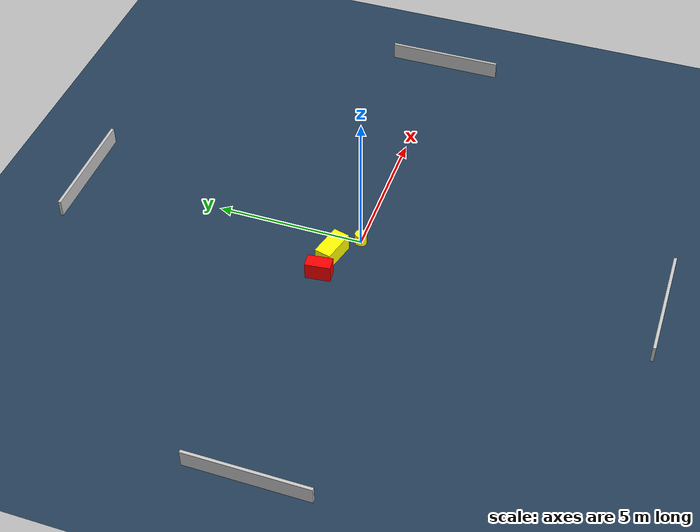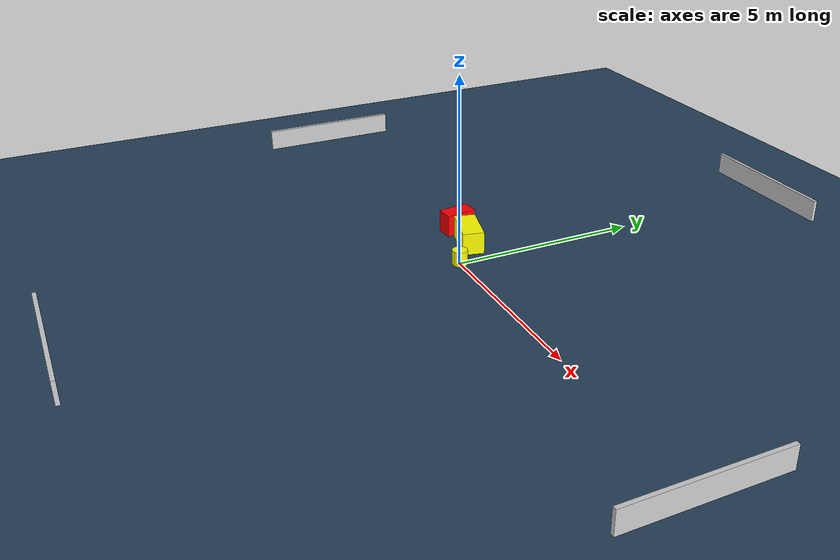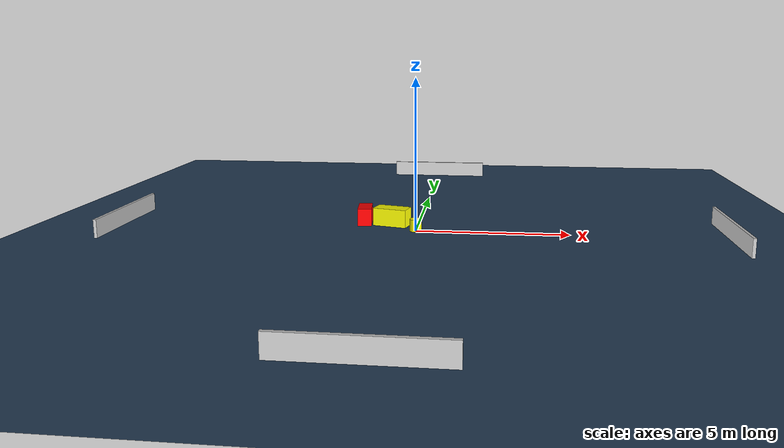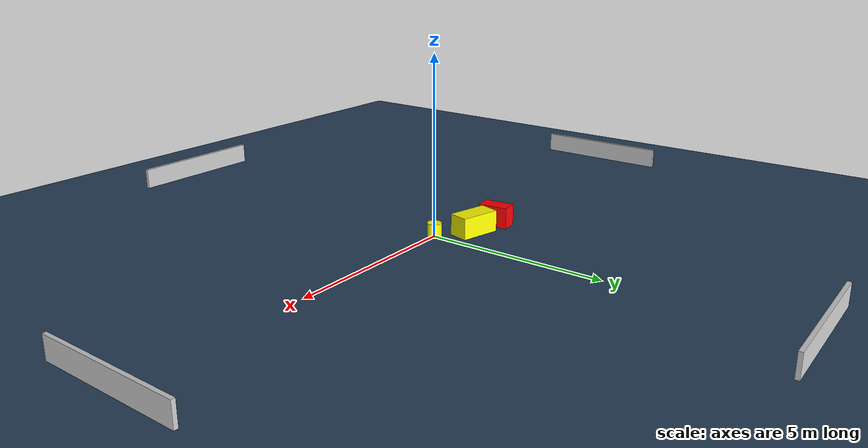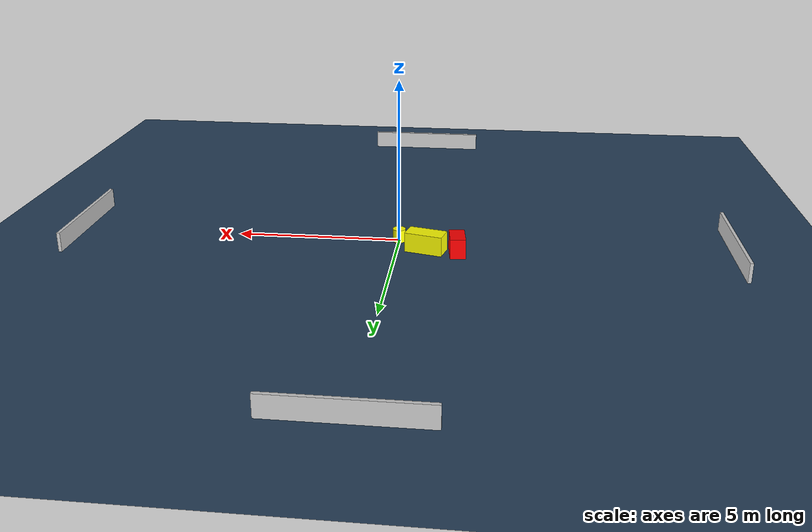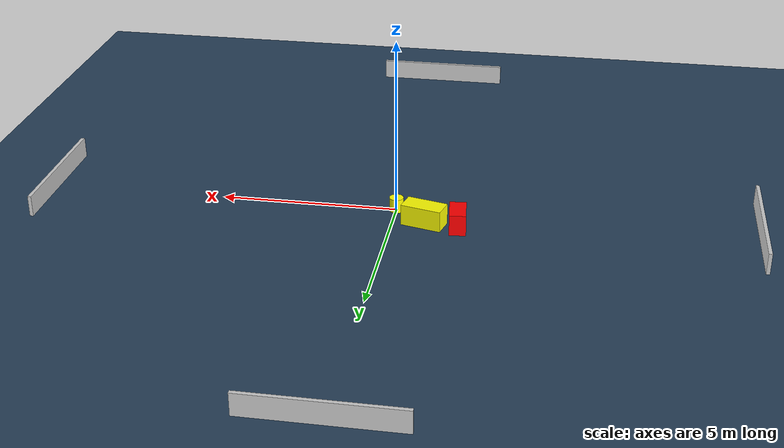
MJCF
<?xml version="1.0" ?>
<mujoco model="generated_environment">
  <option timestep="0.01" integrator="RK4" cone="elliptic"/>
  <default>
    <geom density="1"/>
  </default>
  <asset>
    <texture builtin="gradient" height="3072" name="skybox" rgb1="0.3 0.5 0.7" rgb2="0 0 0" type="skybox" width="512"/>
    <texture builtin="checker" height="300" name="groundplane" rgb1="0.2 0.3 0.4" rgb2="0.1 0.2 0.3" type="2d" width="300"/>
    <material name="groundplane" reflectance="0.2" texrepeat="5 5" texture="groundplane"/>
  </asset>
  <worldbody>
    <light dir="0 0 -1" directional="true" pos="0 0 1.5"/>
    <geom condim="3" friction="0.5 0.005 0.001" material="groundplane" name="floor" pos="0 0 0" size="0 0 0.05" type="plane"/>
    <body name="walls">
      <geom name="wall_1" condim="4" pos="-10.0 0.0 0.3" rgba="0.800000011920929 0.800000011920929 0.800000011920929 1.0" size="0.05 2.0 0.3" type="box"/>
      <geom name="wall_2" condim="4" pos="10.0 0.0 0.3" rgba="0.800000011920929 0.800000011920929 0.800000011920929 1.0" size="0.05 2.0 0.3" type="box"/>
      <geom name="wall_3" condim="4" pos="0.0 -10.0 0.3" rgba="0.800000011920929 0.800000011920929 0.800000011920929 1.0" size="2.0 0.05 0.3" type="box"/>
      <geom name="wall_4" condim="4" pos="0.0 10.0 0.3" rgba="0.800000011920929 0.800000011920929 0.800000011920929 1.0" size="2.0 0.05 0.3" type="box"/>
    </body>
    <body name="robot">
      <joint name="joint_x" type="slide" pos="0 0 0" axis="1 0 0"/>
      <joint name="joint_y" type="slide" pos="0 0 0" axis="0 1 0"/>
      <geom name="robot" type="cylinder" pos="0.0 0.0 0.2" size="0.2 0.2 0.0" mass="5.0" friction="1.0 0.005 0.0001" condim="4" rgba="1.0 1.0 0.0 1.0"/>
    </body>
    <body name="obstacle_1_movable">
      <geom name="obstacle_1_movable" condim="4" pos="-0.8795094697327287 0.6937086813340371 0.3" euler="0 0 75.86069532318652" friction="0.0 0.005 0.001" rgba="1.0 1.0 0.0 1.0" size="0.2855070767522004 0.5782901367243496 0.3" type="box" mass="0.1"/>
      <joint type="free"/>
    </body>
    <body name="obstacle_2_static">
      <geom name="obstacle_2_static" condim="4" pos="-1.8230670434695784 0.8078844326117358 0.3" euler="0 0 186.36817279769198" friction="0.0 0.005 0.001" rgba="1.0 0.0 0.0 1.0" size="0.2318571039749604 0.42283102603915684 0.3" type="box"/>
    </body>
  </worldbody>
  <actuator>
    <motor name="actuator_x" joint="joint_x" gear="1" ctrlrange="-1 1"/>
    <motor name="actuator_y" joint="joint_y" gear="1" ctrlrange="-1 1"/>
  </actuator>
</mujoco>
